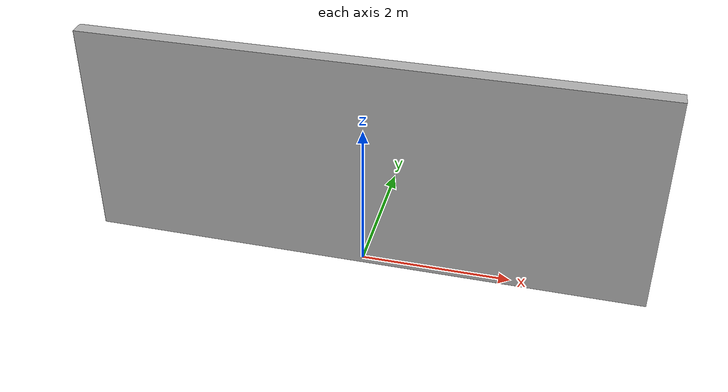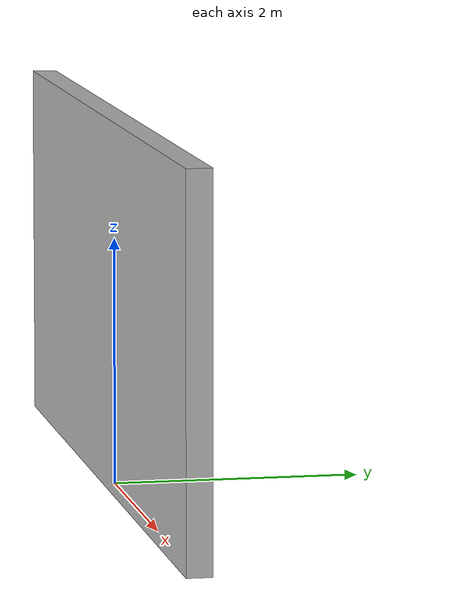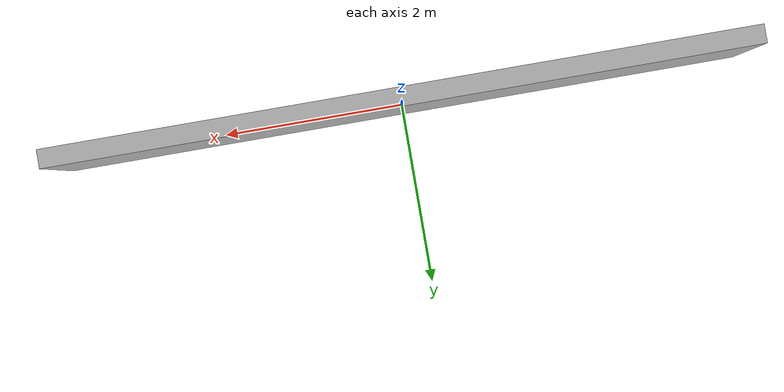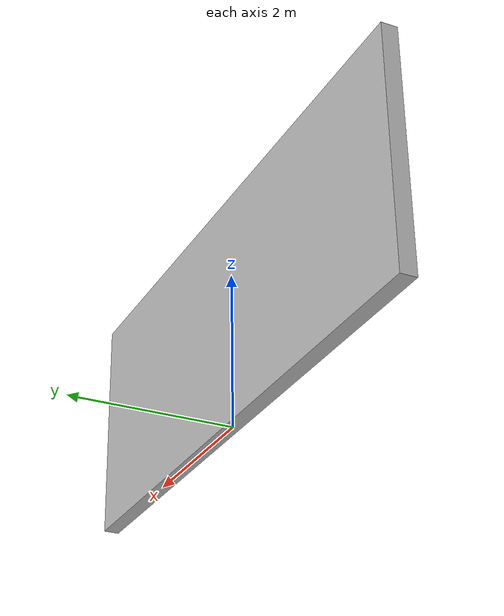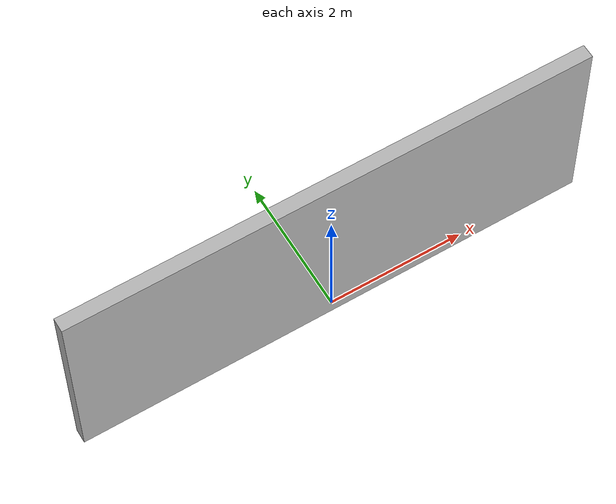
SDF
<?xml version="1.0" ?>
<sdf version="1.3">
  <model name="winter_wall_1">
    <static>true</static>
    <link name="link">
      <pose>0 0 1.5 0 0 0</pose>
      <material>
        <ambient>0.1 0 0 1</ambient>
        <diffuse>0 0 0 1</diffuse>
        <specular>0 0 0 1</specular>
        <emissive>0 0 0 1</emissive>
      </material>
      <collision name="collision">
        <geometry>
          <box>
            <size>7.5 0.2 3</size>
          </box>
        </geometry>
      </collision>
      <visual name="visual">
        <cast_shadows>false</cast_shadows>
        <geometry>
          <box>
            <size>7.5 0.2 3</size>
          </box>
        </geometry>
        <material>
          <script>
            <uri>model://sim_world/models/winter_wall/materials/scripts</uri>
            <uri>model://sim_world/models/winter_wall/materials/textures</uri>
            <name>vrc/winter_wall_1</name>
          </script>
        </material>
      </visual>
    </link>
  </model>
</sdf>
